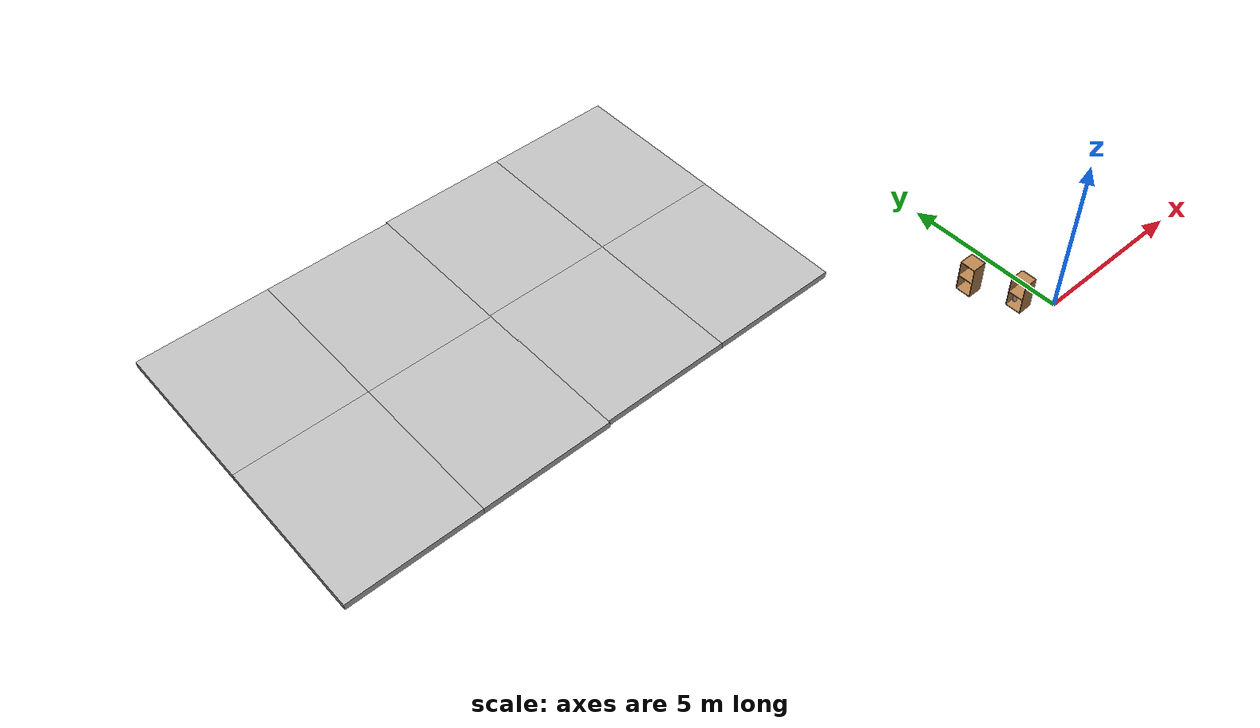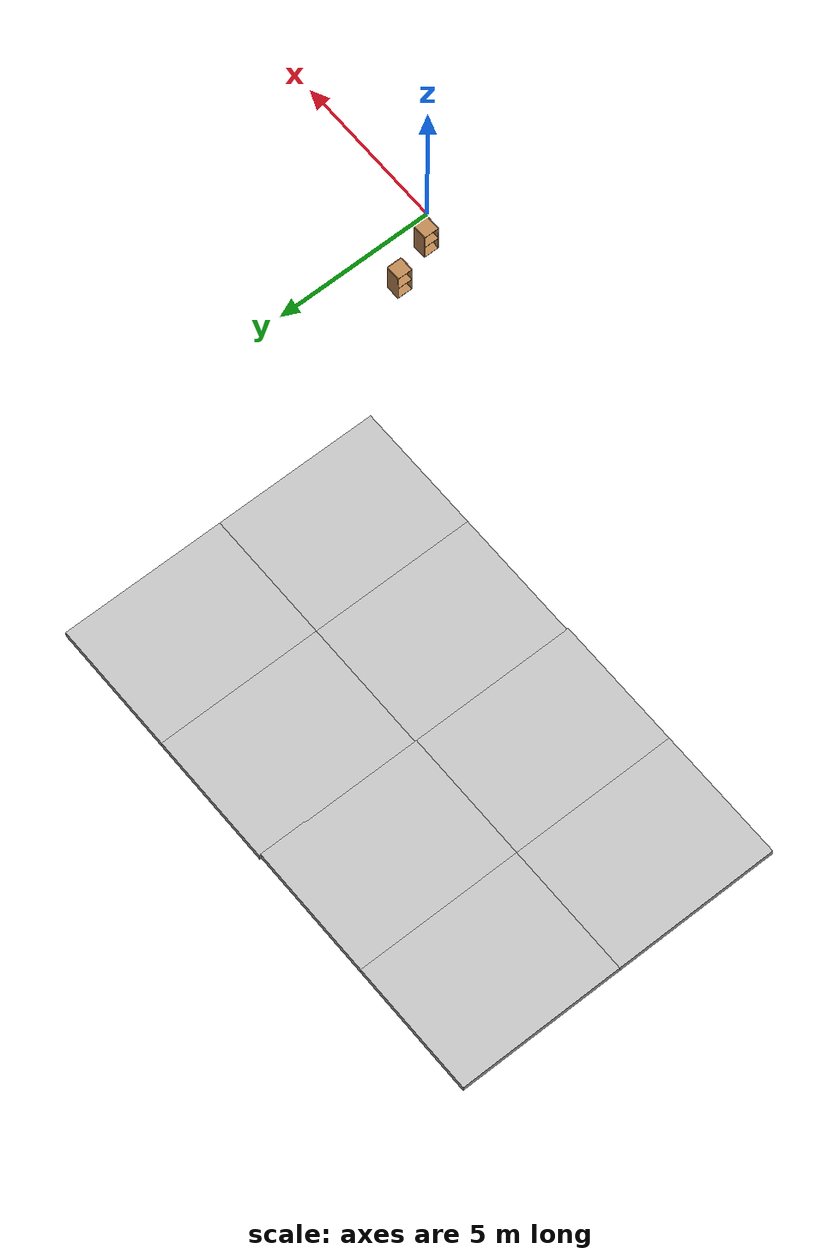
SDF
<sdf version="1.7">
 <world name="default">
  <model name="cabinet">
   <static>1</static>
   <link name="cabinet_bottom_plate">
    <inertial>
     <pose>0 0 -1 0 -0 0</pose>
     <inertia><ixx>2.05</ixx><ixy>0</ixy><ixz>0</ixz><iyy>2.05</iyy><iyz>0</iyz><izz>2.05</izz></inertia>
     <mass>25</mass>
    </inertial>
    <collision name="cabinet_bottom_plate_geom">
     <pose>0 0 0.01 0 -0 0</pose>
     <geometry><box><size>0.45 0.45 0.02</size></box></geometry>
    </collision>
    <visual name="cabinet_bottom_plate_geom_visual">
     <pose>0 0 0.01 0 -0 0</pose>
     <geometry><box><size>0.45 0.45 0.02</size></box></geometry>
     <material>
      <script><uri>file://media/materials/scripts/gazebo.material</uri><name>Gazebo/Wood</name></script>
     </material>
    </visual>
    <collision name="cabinet_bottom_plate_geom_cabinet_back_plate">
     <pose>0.235 0 0.51 0 -0 0</pose>
     <geometry><box><size>0.02 0.45 1.02</size></box></geometry>
    </collision>
    <visual name="cabinet_bottom_plate_geom_cabinet_back_plate_visual">
     <pose>0.235 0 0.51 0 -0 0</pose>
     <geometry><box><size>0.02 0.45 1.02</size></box></geometry>
     <material>
      <script><uri>file://media/materials/scripts/gazebo.material</uri><name>Gazebo/Wood</name></script>
     </material>
    </visual>
    <collision name="cabinet_bottom_plate_geom_cabinet_left_plate">
     <pose>0 0.235 0.51 0 -0 0</pose>
     <geometry><box><size>0.45 0.02 1.02</size></box></geometry>
    </collision>
    <visual name="cabinet_bottom_plate_geom_cabinet_left_plate_visual">
     <pose>0 0.235 0.51 0 -0 0</pose>
     <geometry><box><size>0.45 0.02 1.02</size></box></geometry>
     <material>
      <script><uri>file://media/materials/scripts/gazebo.material</uri><name>Gazebo/Wood</name></script>
     </material>
    </visual>
    <collision name="cabinet_bottom_plate_geom_cabinet_middle_plate">
     <pose>0 0 0.51 0 -0 0</pose>
     <geometry><box><size>0.45 0.45 0.02</size></box></geometry>
    </collision>
    <visual name="cabinet_bottom_plate_geom_cabinet_middle_plate_visual">
     <pose>0 0 0.51 0 -0 0</pose>
     <geometry><box><size>0.45 0.45 0.02</size></box></geometry>
     <material>
      <script><uri>file://media/materials/scripts/gazebo.material</uri><name>Gazebo/Wood</name></script>
     </material>
    </visual>
    <collision name="cabinet_bottom_plate_geom_cabinet_right_plate">
     <pose>0 -0.235 0.51 0 -0 0</pose>
     <geometry><box><size>0.45 0.02 1.02</size></box></geometry>
    </collision>
    <visual name="cabinet_bottom_plate_geom_cabinet_right_plate_visual">
     <pose>0 -0.235 0.51 0 -0 0</pose>
     <geometry><box><size>0.45 0.02 1.02</size></box></geometry>
     <material>
      <script><uri>file://media/materials/scripts/gazebo.material</uri><name>Gazebo/Wood</name></script>
     </material>
    </visual>
    <collision name="cabinet_bottom_plate_geom_cabinet_top_plate">
     <pose>0 0 1.01 0 -0 0</pose>
     <geometry><box><size>0.45 0.45 0.02</size></box></geometry>
    </collision>
    <visual name="cabinet_bottom_plate_geom_cabinet_top_plate_visual">
     <pose>0 0 1.01 0 -0 0</pose>
     <geometry><box><size>0.45 0.45 0.02</size></box></geometry>
     <material>
      <script><uri>file://media/materials/scripts/gazebo.material</uri><name>Gazebo/Wood</name></script>
     </material>
    </visual>
   </link>
   <pose>-0.762925 0.66259 0 0 -0 0</pose>
  </model>
  <model name="beer">
   <link name="link">
    <pose>0 0 0.115 0 -0 0</pose>
    <inertial>
     <mass>0.39</mass>
     <inertia><ixx>0.00058</ixx><ixy>0</ixy><ixz>0</ixz><iyy>0.00058</iyy><iyz>0</iyz><izz>0.00019</izz></inertia>
    </inertial>
    <collision name="collision">
     <geometry><cylinder><radius>0.055</radius><length>0.23</length></cylinder></geometry>
    </collision>
    <visual name="visual">
     <geometry><cylinder><radius>0.055</radius><length>0.23</length></cylinder></geometry>
     <material>
      <script>
       <uri>model://beer/materials/scripts</uri>
       <uri>model://beer/materials/textures</uri>
       <name>Beer/Diffuse</name>
      </script>
     </material>
    </visual>
   </link>
   <pose>-0.766094 0.788832 0.093987 -0.001241 -0.002243 -0.970239</pose>
  </model>
  <model name="mud_box_clone_5">
   <static>1</static>
   <link name="link">
    <collision name="collision"><geometry><box><size>8 10 0.2</size></box></geometry></collision>
    <visual name="visual_1">
     <pose>-2 2.5 0 0 -0 0</pose>
     <cast_shadows>0</cast_shadows>
     <geometry><box><size>4 5 0.2</size></box></geometry>
     <material>
      <script>
       <uri>model://mud_box/materials/scripts</uri>
       <uri>model://mud_box/materials/textures</uri>
       <name>vrc/mud</name>
      </script>
     </material>
    </visual>
    <visual name="visual_2">
     <pose>2 2.5 0 0 -0 0</pose>
     <cast_shadows>0</cast_shadows>
     <geometry><box><size>4 5 0.2</size></box></geometry>
     <material>
      <script>
       <uri>model://mud_box/materials/scripts</uri>
       <uri>model://mud_box/materials/textures</uri>
       <name>vrc/mud</name>
      </script>
     </material>
    </visual>
    <visual name="visual_3">
     <pose>2 -2.5 0 0 -0 0</pose>
     <cast_shadows>0</cast_shadows>
     <geometry><box><size>4 5 0.2</size></box></geometry>
     <material>
      <script>
       <uri>model://mud_box/materials/scripts</uri>
       <uri>model://mud_box/materials/textures</uri>
       <name>vrc/mud</name>
      </script>
     </material>
    </visual>
    <visual name="visual_4">
     <pose>-2 -2.5 0 0 -0 0</pose>
     <cast_shadows>0</cast_shadows>
     <geometry><box><size>4 5 0.2</size></box></geometry>
     <material>
      <script>
       <uri>model://mud_box/materials/scripts</uri>
       <uri>model://mud_box/materials/textures</uri>
       <name>vrc/mud</name>
      </script>
     </material>
    </visual>
   </link>
   <pose>-7.8451 10.0425 0 0 -0 0</pose>
  </model>
  <model name="mud_box_clone_10">
   <static>1</static>
   <link name="link">
    <collision name="collision"><geometry><box><size>8 10 0.2</size></box></geometry></collision>
    <visual name="visual_1">
     <pose>-2 2.5 0 0 -0 0</pose>
     <cast_shadows>0</cast_shadows>
     <geometry><box><size>4 5 0.2</size></box></geometry>
     <material>
      <script>
       <uri>model://mud_box/materials/scripts</uri>
       <uri>model://mud_box/materials/textures</uri>
       <name>vrc/mud</name>
      </script>
     </material>
    </visual>
    <visual name="visual_2">
     <pose>2 2.5 0 0 -0 0</pose>
     <cast_shadows>0</cast_shadows>
     <geometry><box><size>4 5 0.2</size></box></geometry>
     <material>
      <script>
       <uri>model://mud_box/materials/scripts</uri>
       <uri>model://mud_box/materials/textures</uri>
       <name>vrc/mud</name>
      </script>
     </material>
    </visual>
    <visual name="visual_3">
     <pose>2 -2.5 0 0 -0 0</pose>
     <cast_shadows>0</cast_shadows>
     <geometry><box><size>4 5 0.2</size></box></geometry>
     <material>
      <script>
       <uri>model://mud_box/materials/scripts</uri>
       <uri>model://mud_box/materials/textures</uri>
       <name>vrc/mud</name>
      </script>
     </material>
    </visual>
    <visual name="visual_4">
     <pose>-2 -2.5 0 0 -0 0</pose>
     <cast_shadows>0</cast_shadows>
     <geometry><box><size>4 5 0.2</size></box></geometry>
     <material>
      <script>
       <uri>model://mud_box/materials/scripts</uri>
       <uri>model://mud_box/materials/textures</uri>
       <name>vrc/mud</name>
      </script>
     </material>
    </visual>
   </link>
   <pose>-15.8175 9.99287 0 0 -0 0</pose>
  </model>
  <model name="cabinet_clone">
   <static>1</static>
   <link name="cabinet_bottom_plate">
    <inertial>
     <pose>0 0 -1 0 -0 0</pose>
     <inertia><ixx>2.05</ixx><ixy>0</ixy><ixz>0</ixz><iyy>2.05</iyy><iyz>0</iyz><izz>2.05</izz></inertia>
     <mass>25</mass>
    </inertial>
    <collision name="cabinet_bottom_plate_geom">
     <pose>0 0 0.01 0 -0 0</pose>
     <geometry><box><size>0.45 0.45 0.02</size></box></geometry>
    </collision>
    <visual name="cabinet_bottom_plate_geom_visual">
     <pose>0 0 0.01 0 -0 0</pose>
     <geometry><box><size>0.45 0.45 0.02</size></box></geometry>
     <material>
      <script><uri>file://media/materials/scripts/gazebo.material</uri><name>Gazebo/Wood</name></script>
     </material>
    </visual>
    <collision name="cabinet_bottom_plate_geom_cabinet_back_plate">
     <pose>0.235 0 0.51 0 -0 0</pose>
     <geometry><box><size>0.02 0.45 1.02</size></box></geometry>
    </collision>
    <visual name="cabinet_bottom_plate_geom_cabinet_back_plate_visual">
     <pose>0.235 0 0.51 0 -0 0</pose>
     <geometry><box><size>0.02 0.45 1.02</size></box></geometry>
     <material>
      <script><uri>file://media/materials/scripts/gazebo.material</uri><name>Gazebo/Wood</name></script>
     </material>
    </visual>
    <collision name="cabinet_bottom_plate_geom_cabinet_left_plate">
     <pose>0 0.235 0.51 0 -0 0</pose>
     <geometry><box><size>0.45 0.02 1.02</size></box></geometry>
    </collision>
    <visual name="cabinet_bottom_plate_geom_cabinet_left_plate_visual">
     <pose>0 0.235 0.51 0 -0 0</pose>
     <geometry><box><size>0.45 0.02 1.02</size></box></geometry>
     <material>
      <script><uri>file://media/materials/scripts/gazebo.material</uri><name>Gazebo/Wood</name></script>
     </material>
    </visual>
    <collision name="cabinet_bottom_plate_geom_cabinet_middle_plate">
     <pose>0 0 0.51 0 -0 0</pose>
     <geometry><box><size>0.45 0.45 0.02</size></box></geometry>
    </collision>
    <visual name="cabinet_bottom_plate_geom_cabinet_middle_plate_visual">
     <pose>0 0 0.51 0 -0 0</pose>
     <geometry><box><size>0.45 0.45 0.02</size></box></geometry>
     <material>
      <script><uri>file://media/materials/scripts/gazebo.material</uri><name>Gazebo/Wood</name></script>
     </material>
    </visual>
    <collision name="cabinet_bottom_plate_geom_cabinet_right_plate">
     <pose>0 -0.235 0.51 0 -0 0</pose>
     <geometry><box><size>0.45 0.02 1.02</size></box></geometry>
    </collision>
    <visual name="cabinet_bottom_plate_geom_cabinet_right_plate_visual">
     <pose>0 -0.235 0.51 0 -0 0</pose>
     <geometry><box><size>0.45 0.02 1.02</size></box></geometry>
     <material>
      <script><uri>file://media/materials/scripts/gazebo.material</uri><name>Gazebo/Wood</name></script>
     </material>
    </visual>
    <collision name="cabinet_bottom_plate_geom_cabinet_top_plate">
     <pose>0 0 1.01 0 -0 0</pose>
     <geometry><box><size>0.45 0.45 0.02</size></box></geometry>
    </collision>
    <visual name="cabinet_bottom_plate_geom_cabinet_top_plate_visual">
     <pose>0 0 1.01 0 -0 0</pose>
     <geometry><box><size>0.45 0.45 0.02</size></box></geometry>
     <material>
      <script><uri>file://media/materials/scripts/gazebo.material</uri><name>Gazebo/Wood</name></script>
     </material>
    </visual>
   </link>
   <pose>-1.29602 1.99562 0 0 -0 0</pose>
  </model>
 </world>
</sdf>
